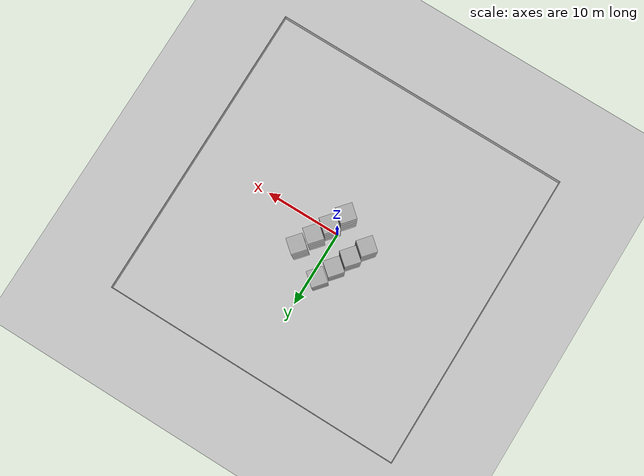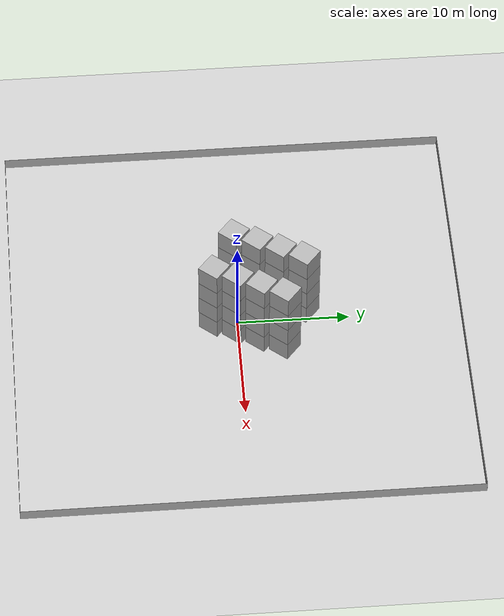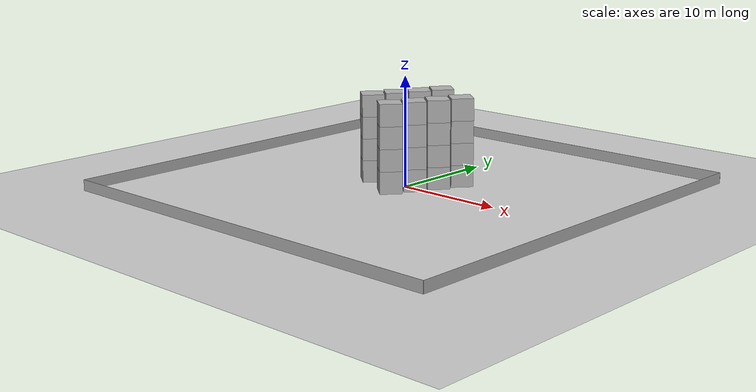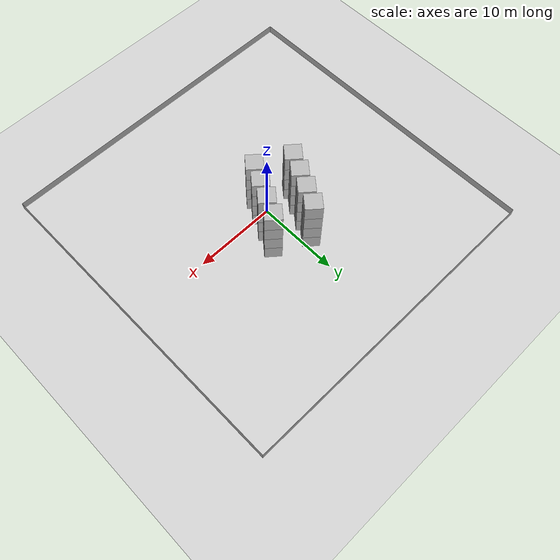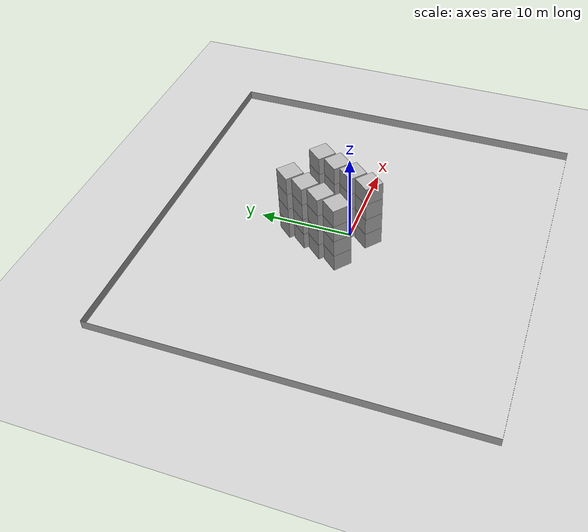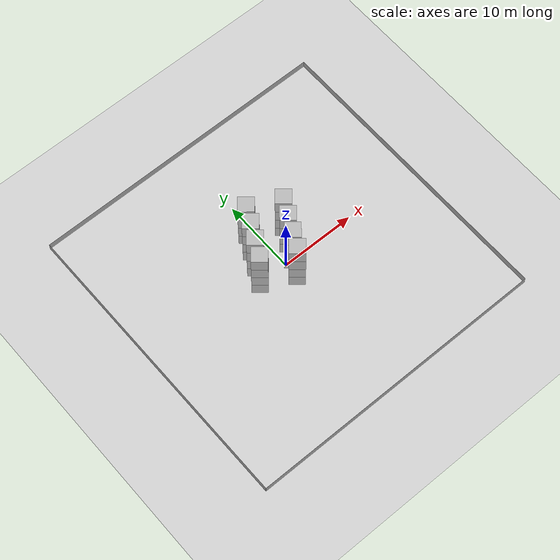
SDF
<sdf version="1.9">
 <world name="swarm_rr_col_glas">
  <model name="ground_plane">
   <static>true</static>
   <link name="link">
    <collision name="collision">
     <geometry><plane><normal>0 0 1</normal><size>1 1</size></plane></geometry>
    </collision>
    <visual name="visual">
     <geometry><plane><normal>0 0 1</normal><size>100 100</size></plane></geometry>
     <material>
      <ambient>0.8 0.8 0.8 1</ambient>
      <diffuse>0.8 0.8 0.8 1</diffuse>
      <specular>0.8 0.8 0.8 1</specular>
     </material>
    </visual>
    <inertial>
     <mass>1</mass>
     <inertia><ixx>1</ixx><ixy>0</ixy><ixz>0</ixz><iyy>1</iyy><iyz>0</iyz><izz>1</izz></inertia>
    </inertial>
   </link>
  </model>
  <model name="wall_1">
   <pose>-20 0 .5 0 0 -1.57</pose>
   <static>true</static>
   <link name="link">
    <collision name="collision"><geometry><box><size>40 .01 1</size></box></geometry></collision>
    <visual name="visual">
     <geometry><box><size>40 .01 1</size></box></geometry>
     <material>
      <ambient>0.7 0.7 0.7 1</ambient>
      <diffuse>0.7 0.7 0.7 1</diffuse>
      <specular>0.7 0.7 0.7 1</specular>
     </material>
    </visual>
    <inertial>
     <mass>1</mass>
     <inertia><ixx>1</ixx><ixy>0</ixy><ixz>0</ixz><iyy>1</iyy><iyz>0</iyz><izz>1</izz></inertia>
    </inertial>
   </link>
  </model>
  <model name="wall_2">
   <pose>20 0 .5 0 0 -1.57</pose>
   <static>true</static>
   <link name="link">
    <collision name="collision"><geometry><box><size>40 .01 1</size></box></geometry></collision>
    <visual name="visual">
     <geometry><box><size>40 .01 1</size></box></geometry>
     <material>
      <ambient>0.7 0.7 0.7 1</ambient>
      <diffuse>0.7 0.7 0.7 1</diffuse>
      <specular>0.7 0.7 0.7 1</specular>
     </material>
    </visual>
    <inertial>
     <mass>1</mass>
     <inertia><ixx>1</ixx><ixy>0</ixy><ixz>0</ixz><iyy>1</iyy><iyz>0</iyz><izz>1</izz></inertia>
    </inertial>
   </link>
  </model>
  <model name="wall_3">
   <pose>0 20 .5 0 0 0</pose>
   <static>true</static>
   <link name="link">
    <collision name="collision"><geometry><box><size>40 .01 1</size></box></geometry></collision>
    <visual name="visual">
     <geometry><box><size>40 .01 1</size></box></geometry>
     <material>
      <ambient>0.7 0.7 0.7 1</ambient>
      <diffuse>0.7 0.7 0.7 1</diffuse>
      <specular>0.7 0.7 0.7 1</specular>
     </material>
    </visual>
    <inertial>
     <mass>1</mass>
     <inertia><ixx>1</ixx><ixy>0</ixy><ixz>0</ixz><iyy>1</iyy><iyz>0</iyz><izz>1</izz></inertia>
    </inertial>
   </link>
  </model>
  <model name="wall_4">
   <pose>0 -20 .5 0 0 0</pose>
   <static>true</static>
   <link name="link">
    <collision name="collision"><geometry><box><size>40 .01 1</size></box></geometry></collision>
    <visual name="visual">
     <geometry><box><size>40 .01 1</size></box></geometry>
     <material>
      <ambient>0.7 0.7 0.7 1</ambient>
      <diffuse>0.7 0.7 0.7 1</diffuse>
      <specular>0.7 0.7 0.7 1</specular>
     </material>
    </visual>
    <inertial>
     <mass>1</mass>
     <inertia><ixx>1</ixx><ixy>0</ixy><ixz>0</ixz><iyy>1</iyy><iyz>0</iyz><izz>1</izz></inertia>
    </inertial>
   </link>
  </model>
  <model name="obstacle_left_1">
   <static>true</static>
   <pose>-4 0 1 0 0 -0.7</pose>
   <link name="link">
    <collision name="collision"><geometry><box><size>2 2 2</size></box></geometry></collision>
    <visual name="visual">
     <geometry><box><size>2 2 2</size></box></geometry>
     <material>
      <ambient>0.7 0.7 0.7 1</ambient>
      <diffuse>0.7 0.7 0.7 1</diffuse>
      <specular>0.7 0.7 0.7 1</specular>
     </material>
    </visual>
   </link>
  </model>
  <model name="obstacle_left_11">
   <static>true</static>
   <pose>-4 0 3 0 0 -0.7</pose>
   <link name="link">
    <collision name="collision"><geometry><box><size>2 2 2</size></box></geometry></collision>
    <visual name="visual">
     <geometry><box><size>2 2 2</size></box></geometry>
     <material>
      <ambient>0.7 0.7 0.7 1</ambient>
      <diffuse>0.7 0.7 0.7 1</diffuse>
      <specular>0.7 0.7 0.7 1</specular>
     </material>
    </visual>
   </link>
  </model>
  <model name="obstacle_left_12">
   <static>true</static>
   <pose>-4 0 5 0 0 -0.7</pose>
   <link name="link">
    <collision name="collision"><geometry><box><size>2 2 2</size></box></geometry></collision>
    <visual name="visual">
     <geometry><box><size>2 2 2</size></box></geometry>
     <material>
      <ambient>0.7 0.7 0.7 1</ambient>
      <diffuse>0.7 0.7 0.7 1</diffuse>
      <specular>0.7 0.7 0.7 1</specular>
     </material>
    </visual>
   </link>
  </model>
  <model name="obstacle_left_13">
   <static>true</static>
   <pose>-4 0 7 0 0 -0.7</pose>
   <link name="link">
    <collision name="collision"><geometry><box><size>2 2 2</size></box></geometry></collision>
    <visual name="visual">
     <geometry><box><size>2 2 2</size></box></geometry>
     <material>
      <ambient>0.7 0.7 0.7 1</ambient>
      <diffuse>0.7 0.7 0.7 1</diffuse>
      <specular>0.7 0.7 0.7 1</specular>
     </material>
    </visual>
   </link>
  </model>
  <model name="obstacle_left_2">
   <static>true</static>
   <pose>-3 2 1 0 0 -0.7</pose>
   <link name="link">
    <collision name="collision"><geometry><box><size>2 2 2</size></box></geometry></collision>
    <visual name="visual">
     <geometry><box><size>2 2 2</size></box></geometry>
     <material>
      <ambient>0.7 0.7 0.7 1</ambient>
      <diffuse>0.7 0.7 0.7 1</diffuse>
      <specular>0.7 0.7 0.7 1</specular>
     </material>
    </visual>
   </link>
  </model>
  <model name="obstacle_left_21">
   <static>true</static>
   <pose>-3 2 3 0 0 -0.7</pose>
   <link name="link">
    <collision name="collision"><geometry><box><size>2 2 2</size></box></geometry></collision>
    <visual name="visual">
     <geometry><box><size>2 2 2</size></box></geometry>
     <material>
      <ambient>0.7 0.7 0.7 1</ambient>
      <diffuse>0.7 0.7 0.7 1</diffuse>
      <specular>0.7 0.7 0.7 1</specular>
     </material>
    </visual>
   </link>
  </model>
  <model name="obstacle_left_22">
   <static>true</static>
   <pose>-3 2 5 0 0 -0.7</pose>
   <link name="link">
    <collision name="collision"><geometry><box><size>2 2 2</size></box></geometry></collision>
    <visual name="visual">
     <geometry><box><size>2 2 2</size></box></geometry>
     <material>
      <ambient>0.7 0.7 0.7 1</ambient>
      <diffuse>0.7 0.7 0.7 1</diffuse>
      <specular>0.7 0.7 0.7 1</specular>
     </material>
    </visual>
   </link>
  </model>
  <model name="obstacle_left_23">
   <static>true</static>
   <pose>-3 2 7 0 0 -0.7</pose>
   <link name="link">
    <collision name="collision"><geometry><box><size>2 2 2</size></box></geometry></collision>
    <visual name="visual">
     <geometry><box><size>2 2 2</size></box></geometry>
     <material>
      <ambient>0.7 0.7 0.7 1</ambient>
      <diffuse>0.7 0.7 0.7 1</diffuse>
      <specular>0.7 0.7 0.7 1</specular>
     </material>
    </visual>
   </link>
  </model>
  <model name="obstacle_left_3">
   <static>true</static>
   <pose>-2 4 1 0 0 -0.7</pose>
   <link name="link">
    <collision name="collision"><geometry><box><size>2 2 2</size></box></geometry></collision>
    <visual name="visual">
     <geometry><box><size>2 2 2</size></box></geometry>
     <material>
      <ambient>0.7 0.7 0.7 1</ambient>
      <diffuse>0.7 0.7 0.7 1</diffuse>
      <specular>0.7 0.7 0.7 1</specular>
     </material>
    </visual>
   </link>
  </model>
  <model name="obstacle_left_31">
   <static>true</static>
   <pose>-2 4 3 0 0 -0.7</pose>
   <link name="link">
    <collision name="collision"><geometry><box><size>2 2 2</size></box></geometry></collision>
    <visual name="visual">
     <geometry><box><size>2 2 2</size></box></geometry>
     <material>
      <ambient>0.7 0.7 0.7 1</ambient>
      <diffuse>0.7 0.7 0.7 1</diffuse>
      <specular>0.7 0.7 0.7 1</specular>
     </material>
    </visual>
   </link>
  </model>
  <model name="obstacle_left_32">
   <static>true</static>
   <pose>-2 4 5 0 0 -0.7</pose>
   <link name="link">
    <collision name="collision"><geometry><box><size>2 2 2</size></box></geometry></collision>
    <visual name="visual">
     <geometry><box><size>2 2 2</size></box></geometry>
     <material>
      <ambient>0.7 0.7 0.7 1</ambient>
      <diffuse>0.7 0.7 0.7 1</diffuse>
      <specular>0.7 0.7 0.7 1</specular>
     </material>
    </visual>
   </link>
  </model>
  <model name="obstacle_left_33">
   <static>true</static>
   <pose>-2 4 7 0 0 -0.7</pose>
   <link name="link">
    <collision name="collision"><geometry><box><size>2 2 2</size></box></geometry></collision>
    <visual name="visual">
     <geometry><box><size>2 2 2</size></box></geometry>
     <material>
      <ambient>0.7 0.7 0.7 1</ambient>
      <diffuse>0.7 0.7 0.7 1</diffuse>
      <specular>0.7 0.7 0.7 1</specular>
     </material>
    </visual>
   </link>
  </model>
  <model name="obstacle_left_4">
   <static>true</static>
   <pose>-1 6 1 0 0 -0.7</pose>
   <link name="link">
    <collision name="collision"><geometry><box><size>2 2 2</size></box></geometry></collision>
    <visual name="visual">
     <geometry><box><size>2 2 2</size></box></geometry>
     <material>
      <ambient>0.7 0.7 0.7 1</ambient>
      <diffuse>0.7 0.7 0.7 1</diffuse>
      <specular>0.7 0.7 0.7 1</specular>
     </material>
    </visual>
   </link>
  </model>
  <model name="obstacle_left_41">
   <static>true</static>
   <pose>-1 6 3 0 0 -0.7</pose>
   <link name="link">
    <collision name="collision"><geometry><box><size>2 2 2</size></box></geometry></collision>
    <visual name="visual">
     <geometry><box><size>2 2 2</size></box></geometry>
     <material>
      <ambient>0.7 0.7 0.7 1</ambient>
      <diffuse>0.7 0.7 0.7 1</diffuse>
      <specular>0.7 0.7 0.7 1</specular>
     </material>
    </visual>
   </link>
  </model>
  <model name="obstacle_left_42">
   <static>true</static>
   <pose>-1 6 5 0 0 -0.7</pose>
   <link name="link">
    <collision name="collision"><geometry><box><size>2 2 2</size></box></geometry></collision>
    <visual name="visual">
     <geometry><box><size>2 2 2</size></box></geometry>
     <material>
      <ambient>0.7 0.7 0.7 1</ambient>
      <diffuse>0.7 0.7 0.7 1</diffuse>
      <specular>0.7 0.7 0.7 1</specular>
     </material>
    </visual>
   </link>
  </model>
  <model name="obstacle_left_43">
   <static>true</static>
   <pose>-1 6 7 0 0 -0.7</pose>
   <link name="link">
    <collision name="collision"><geometry><box><size>2 2 2</size></box></geometry></collision>
    <visual name="visual">
     <geometry><box><size>2 2 2</size></box></geometry>
     <material>
      <ambient>0.7 0.7 0.7 1</ambient>
      <diffuse>0.7 0.7 0.7 1</diffuse>
      <specular>0.7 0.7 0.7 1</specular>
     </material>
    </visual>
   </link>
  </model>
  <model name="obstacle_left_50">
   <static>true</static>
   <pose>0 -2 1 0 0 -0.7</pose>
   <link name="link">
    <collision name="collision"><geometry><box><size>2 2 2</size></box></geometry></collision>
    <visual name="visual">
     <geometry><box><size>2 2 2</size></box></geometry>
     <material>
      <ambient>0.7 0.7 0.7 1</ambient>
      <diffuse>0.7 0.7 0.7 1</diffuse>
      <specular>0.7 0.7 0.7 1</specular>
     </material>
    </visual>
   </link>
  </model>
  <model name="obstacle_left_51">
   <static>true</static>
   <pose>0 -2 3 0 0 -0.7</pose>
   <link name="link">
    <collision name="collision"><geometry><box><size>2 2 2</size></box></geometry></collision>
    <visual name="visual">
     <geometry><box><size>2 2 2</size></box></geometry>
     <material>
      <ambient>0.7 0.7 0.7 1</ambient>
      <diffuse>0.7 0.7 0.7 1</diffuse>
      <specular>0.7 0.7 0.7 1</specular>
     </material>
    </visual>
   </link>
  </model>
  <model name="obstacle_left_52">
   <static>true</static>
   <pose>0 -2 5 0 0 -0.7</pose>
   <link name="link">
    <collision name="collision"><geometry><box><size>2 2 2</size></box></geometry></collision>
    <visual name="visual">
     <geometry><box><size>2 2 2</size></box></geometry>
     <material>
      <ambient>0.7 0.7 0.7 1</ambient>
      <diffuse>0.7 0.7 0.7 1</diffuse>
      <specular>0.7 0.7 0.7 1</specular>
     </material>
    </visual>
   </link>
  </model>
  <model name="obstacle_left_53">
   <static>true</static>
   <pose>0 -2 7 0 0 -0.7</pose>
   <link name="link">
    <collision name="collision"><geometry><box><size>2 2 2</size></box></geometry></collision>
    <visual name="visual">
     <geometry><box><size>2 2 2</size></box></geometry>
     <material>
      <ambient>0.7 0.7 0.7 1</ambient>
      <diffuse>0.7 0.7 0.7 1</diffuse>
      <specular>0.7 0.7 0.7 1</specular>
     </material>
    </visual>
   </link>
  </model>
  <model name="obstacle_left_60">
   <static>true</static>
   <pose>1 0 1 0 0 -0.7</pose>
   <link name="link">
    <collision name="collision"><geometry><box><size>2 2 2</size></box></geometry></collision>
    <visual name="visual">
     <geometry><box><size>2 2 2</size></box></geometry>
     <material>
      <ambient>0.7 0.7 0.7 1</ambient>
      <diffuse>0.7 0.7 0.7 1</diffuse>
      <specular>0.7 0.7 0.7 1</specular>
     </material>
    </visual>
   </link>
  </model>
  <model name="obstacle_left_61">
   <static>true</static>
   <pose>1 0 3 0 0 -0.7</pose>
   <link name="link">
    <collision name="collision"><geometry><box><size>2 2 2</size></box></geometry></collision>
    <visual name="visual">
     <geometry><box><size>2 2 2</size></box></geometry>
     <material>
      <ambient>0.7 0.7 0.7 1</ambient>
      <diffuse>0.7 0.7 0.7 1</diffuse>
      <specular>0.7 0.7 0.7 1</specular>
     </material>
    </visual>
   </link>
  </model>
  <model name="obstacle_left_62">
   <static>true</static>
   <pose>1 0 5 0 0 -0.7</pose>
   <link name="link">
    <collision name="collision"><geometry><box><size>2 2 2</size></box></geometry></collision>
    <visual name="visual">
     <geometry><box><size>2 2 2</size></box></geometry>
     <material>
      <ambient>0.7 0.7 0.7 1</ambient>
      <diffuse>0.7 0.7 0.7 1</diffuse>
      <specular>0.7 0.7 0.7 1</specular>
     </material>
    </visual>
   </link>
  </model>
  <model name="obstacle_left_63">
   <static>true</static>
   <pose>1 0 7 0 0 -0.7</pose>
   <link name="link">
    <collision name="collision"><geometry><box><size>2 2 2</size></box></geometry></collision>
    <visual name="visual">
     <geometry><box><size>2 2 2</size></box></geometry>
     <material>
      <ambient>0.7 0.7 0.7 1</ambient>
      <diffuse>0.7 0.7 0.7 1</diffuse>
      <specular>0.7 0.7 0.7 1</specular>
     </material>
    </visual>
   </link>
  </model>
  <model name="obstacle_left_70">
   <static>true</static>
   <pose>2 2 1 0 0 -0.7</pose>
   <link name="link">
    <collision name="collision"><geometry><box><size>2 2 2</size></box></geometry></collision>
    <visual name="visual">
     <geometry><box><size>2 2 2</size></box></geometry>
     <material>
      <ambient>0.7 0.7 0.7 1</ambient>
      <diffuse>0.7 0.7 0.7 1</diffuse>
      <specular>0.7 0.7 0.7 1</specular>
     </material>
    </visual>
   </link>
  </model>
  <model name="obstacle_left_71">
   <static>true</static>
   <pose>2 2 3 0 0 -0.7</pose>
   <link name="link">
    <collision name="collision"><geometry><box><size>2 2 2</size></box></geometry></collision>
    <visual name="visual">
     <geometry><box><size>2 2 2</size></box></geometry>
     <material>
      <ambient>0.7 0.7 0.7 1</ambient>
      <diffuse>0.7 0.7 0.7 1</diffuse>
      <specular>0.7 0.7 0.7 1</specular>
     </material>
    </visual>
   </link>
  </model>
  <model name="obstacle_left_72">
   <static>true</static>
   <pose>2 2 5 0 0 -0.7</pose>
   <link name="link">
    <collision name="collision"><geometry><box><size>2 2 2</size></box></geometry></collision>
    <visual name="visual">
     <geometry><box><size>2 2 2</size></box></geometry>
     <material>
      <ambient>0.7 0.7 0.7 1</ambient>
      <diffuse>0.7 0.7 0.7 1</diffuse>
      <specular>0.7 0.7 0.7 1</specular>
     </material>
    </visual>
   </link>
  </model>
  <model name="obstacle_left_73">
   <static>true</static>
   <pose>2 2 7 0 0 -0.7</pose>
   <link name="link">
    <collision name="collision"><geometry><box><size>2 2 2</size></box></geometry></collision>
    <visual name="visual">
     <geometry><box><size>2 2 2</size></box></geometry>
     <material>
      <ambient>0.7 0.7 0.7 1</ambient>
      <diffuse>0.7 0.7 0.7 1</diffuse>
      <specular>0.7 0.7 0.7 1</specular>
     </material>
    </visual>
   </link>
  </model>
  <model name="obstacle_left_80">
   <static>true</static>
   <pose>3 4 1 0 0 -0.7</pose>
   <link name="link">
    <collision name="collision"><geometry><box><size>2 2 2</size></box></geometry></collision>
    <visual name="visual">
     <geometry><box><size>2 2 2</size></box></geometry>
     <material>
      <ambient>0.7 0.7 0.7 1</ambient>
      <diffuse>0.7 0.7 0.7 1</diffuse>
      <specular>0.7 0.7 0.7 1</specular>
     </material>
    </visual>
   </link>
  </model>
  <model name="obstacle_left_81">
   <static>true</static>
   <pose>3 4 3 0 0 -0.7</pose>
   <link name="link">
    <collision name="collision"><geometry><box><size>2 2 2</size></box></geometry></collision>
    <visual name="visual">
     <geometry><box><size>2 2 2</size></box></geometry>
     <material>
      <ambient>0.7 0.7 0.7 1</ambient>
      <diffuse>0.7 0.7 0.7 1</diffuse>
      <specular>0.7 0.7 0.7 1</specular>
     </material>
    </visual>
   </link>
  </model>
  <model name="obstacle_left_82">
   <static>true</static>
   <pose>3 4 5 0 0 -0.7</pose>
   <link name="link">
    <collision name="collision"><geometry><box><size>2 2 2</size></box></geometry></collision>
    <visual name="visual">
     <geometry><box><size>2 2 2</size></box></geometry>
     <material>
      <ambient>0.7 0.7 0.7 1</ambient>
      <diffuse>0.7 0.7 0.7 1</diffuse>
      <specular>0.7 0.7 0.7 1</specular>
     </material>
    </visual>
   </link>
  </model>
  <model name="obstacle_left_83">
   <static>true</static>
   <pose>3 4 7 0 0 -0.7</pose>
   <link name="link">
    <collision name="collision"><geometry><box><size>2 2 2</size></box></geometry></collision>
    <visual name="visual">
     <geometry><box><size>2 2 2</size></box></geometry>
     <material>
      <ambient>0.7 0.7 0.7 1</ambient>
      <diffuse>0.7 0.7 0.7 1</diffuse>
      <specular>0.7 0.7 0.7 1</specular>
     </material>
    </visual>
   </link>
  </model>
 </world>
</sdf>
